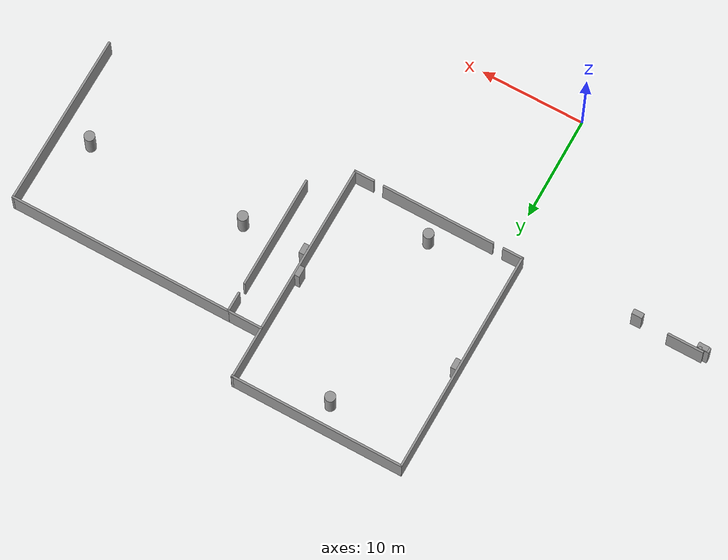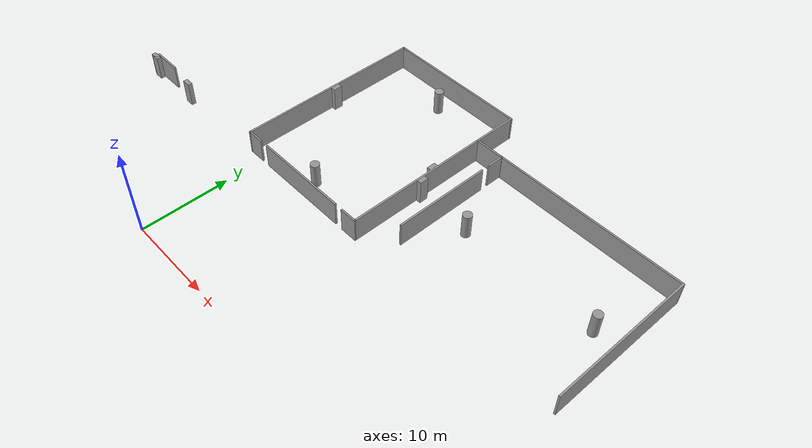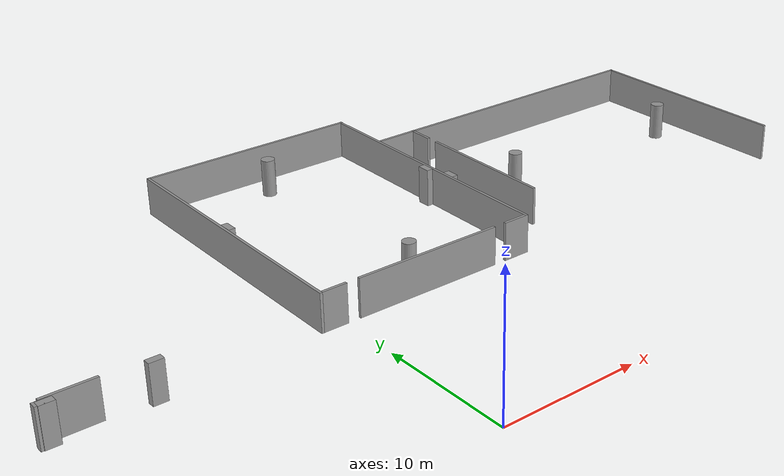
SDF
<sdf version="1.6">
 <world name="default">
  <model name="grey_wall_0_0_clone_2_0_clone_clone">
   <link name="link">
    <pose>0 0 1.4 0 -0 0</pose>
    <inertial>
     <mass>1</mass>
     <inertia><ixx>1</ixx><ixy>0</ixy><ixz>0</ixz><iyy>1</iyy><iyz>0</iyz><izz>1</izz></inertia>
    </inertial>
    <visual name="visual">
     <cast_shadows>0</cast_shadows>
     <geometry><box><size>3.5 0.2 2.8</size></box></geometry>
     <material>
      <script>
       <uri>model://grey_wall/materials/scripts</uri>
       <uri>model://grey_wall/materials/textures</uri>
       <name>vrc/grey_wall</name>
      </script>
      <ambient>1 1 1 1</ambient>
      <diffuse>1 1 1 1</diffuse>
      <specular>0 0 0 1</specular>
      <emissive>0 0 0 1</emissive>
      <shader type="vertex"><normal_map>__default__</normal_map></shader>
     </material>
    </visual>
    <collision name="collision">
     <geometry><box><size>3.5 0.2 2.8</size></box></geometry>
     <surface>
      <friction>
       <ode><mu>1</mu><mu2>1</mu2><fdir1>0 0 0</fdir1><slip1>0</slip1><slip2>0</slip2></ode>
       <torsional>
        <coefficient>1</coefficient>
        <patch_radius>0</patch_radius>
        <surface_radius>0</surface_radius>
        <use_patch_radius>1</use_patch_radius>
        <ode><slip>0</slip></ode>
       </torsional>
      </friction>
      <bounce><restitution_coefficient>0</restitution_coefficient><threshold>1e+06</threshold></bounce>
      <contact>
       <collide_without_contact>0</collide_without_contact>
       <collide_without_contact_bitmask>1</collide_without_contact_bitmask>
       <collide_bitmask>1</collide_bitmask>
       <ode>
        <soft_cfm>0</soft_cfm>
        <soft_erp>0.2</soft_erp>
        <kp>1e+13</kp>
        <kd>1</kd>
        <max_vel>0.01</max_vel>
        <min_depth>0</min_depth>
       </ode>
       <bullet>
        <split_impulse>1</split_impulse>
        <split_impulse_penetration_threshold>-0.01</split_impulse_penetration_threshold>
        <soft_cfm>0</soft_cfm>
        <soft_erp>0.2</soft_erp>
        <kp>1e+13</kp>
        <kd>1</kd>
       </bullet>
      </contact>
     </surface>
    </collision>
   </link>
   <static>1</static>
   <pose>-17.8174 14.5517 0 0 -0 0</pose>
  </model>
  <model name="g2_clone_0_0_0_clone">
   <link name="link">
    <pose>0 0 1.4 0 -0 0</pose>
    <inertial>
     <mass>1</mass>
     <inertia><ixx>1</ixx><ixy>0</ixy><ixz>0</ixz><iyy>1</iyy><iyz>0</iyz><izz>1</izz></inertia>
    </inertial>
    <visual name="visual">
     <cast_shadows>0</cast_shadows>
     <geometry><box><size>21.8 0.2 2.8</size></box></geometry>
     <material>
      <script>
       <uri>model://grey_wall/materials/scripts</uri>
       <uri>model://grey_wall/materials/textures</uri>
       <name>vrc/grey_wall</name>
      </script>
      <ambient>1 1 1 1</ambient>
      <diffuse>1 1 1 1</diffuse>
      <specular>0 0 0 1</specular>
      <emissive>0 0 0 1</emissive>
      <shader type="vertex"><normal_map>__default__</normal_map></shader>
     </material>
    </visual>
    <collision name="collision">
     <geometry><box><size>21.8 0.2 2.8</size></box></geometry>
     <surface>
      <friction>
       <ode><mu>1</mu><mu2>1</mu2><fdir1>0 0 0</fdir1><slip1>0</slip1><slip2>0</slip2></ode>
       <torsional>
        <coefficient>1</coefficient>
        <patch_radius>0</patch_radius>
        <surface_radius>0</surface_radius>
        <use_patch_radius>1</use_patch_radius>
        <ode><slip>0</slip></ode>
       </torsional>
      </friction>
      <bounce><restitution_coefficient>0</restitution_coefficient><threshold>1e+06</threshold></bounce>
      <contact>
       <collide_without_contact>0</collide_without_contact>
       <collide_without_contact_bitmask>1</collide_without_contact_bitmask>
       <collide_bitmask>1</collide_bitmask>
       <ode>
        <soft_cfm>0</soft_cfm>
        <soft_erp>0.2</soft_erp>
        <kp>1e+13</kp>
        <kd>1</kd>
        <max_vel>0.01</max_vel>
        <min_depth>0</min_depth>
       </ode>
       <bullet>
        <split_impulse>1</split_impulse>
        <split_impulse_penetration_threshold>-0.01</split_impulse_penetration_threshold>
        <soft_cfm>0</soft_cfm>
        <soft_erp>0.2</soft_erp>
        <kp>1e+13</kp>
        <kd>1</kd>
       </bullet>
      </contact>
     </surface>
    </collision>
   </link>
   <static>1</static>
   <pose>14.8836 25.3813 0 0 0 -1.57584</pose>
  </model>
  <model name="g2_clone_0_0_clone_clone_0">
   <link name="link">
    <pose>0 0 1.4 0 -0 0</pose>
    <inertial>
     <mass>1</mass>
     <inertia><ixx>1</ixx><ixy>0</ixy><ixz>0</ixz><iyy>1</iyy><iyz>0</iyz><izz>1</izz></inertia>
    </inertial>
    <visual name="visual">
     <cast_shadows>0</cast_shadows>
     <geometry><box><size>21.8 0.2 2.8</size></box></geometry>
     <material>
      <script>
       <uri>model://grey_wall/materials/scripts</uri>
       <uri>model://grey_wall/materials/textures</uri>
       <name>vrc/grey_wall</name>
      </script>
      <ambient>1 1 1 1</ambient>
      <diffuse>1 1 1 1</diffuse>
      <specular>0 0 0 1</specular>
      <emissive>0 0 0 1</emissive>
      <shader type="vertex"><normal_map>__default__</normal_map></shader>
     </material>
    </visual>
    <collision name="collision">
     <geometry><box><size>21.8 0.2 2.8</size></box></geometry>
     <surface>
      <friction>
       <ode><mu>1</mu><mu2>1</mu2><fdir1>0 0 0</fdir1><slip1>0</slip1><slip2>0</slip2></ode>
       <torsional>
        <coefficient>1</coefficient>
        <patch_radius>0</patch_radius>
        <surface_radius>0</surface_radius>
        <use_patch_radius>1</use_patch_radius>
        <ode><slip>0</slip></ode>
       </torsional>
      </friction>
      <bounce><restitution_coefficient>0</restitution_coefficient><threshold>1e+06</threshold></bounce>
      <contact>
       <collide_without_contact>0</collide_without_contact>
       <collide_without_contact_bitmask>1</collide_without_contact_bitmask>
       <collide_bitmask>1</collide_bitmask>
       <ode>
        <soft_cfm>0</soft_cfm>
        <soft_erp>0.2</soft_erp>
        <kp>1e+13</kp>
        <kd>1</kd>
        <max_vel>0.01</max_vel>
        <min_depth>0</min_depth>
       </ode>
       <bullet>
        <split_impulse>1</split_impulse>
        <split_impulse_penetration_threshold>-0.01</split_impulse_penetration_threshold>
        <soft_cfm>0</soft_cfm>
        <soft_erp>0.2</soft_erp>
        <kp>1e+13</kp>
        <kd>1</kd>
       </bullet>
      </contact>
     </surface>
    </collision>
   </link>
   <static>1</static>
   <pose>-1.71755 25.3759 0 0 0 -1.57584</pose>
  </model>
  <model name="g3_clone_clone_0_clone_0_0_0_0_0_0_clone_clone_clone_0_clone_0_clone_0_clone_0_clone_clone">
   <link name="link">
    <pose>1.55996 -1.33829 1.4 0 -0 0.001589</pose>
    <inertial>
     <mass>1</mass>
     <inertia><ixx>1</ixx><ixy>0</ixy><ixz>0</ixz><iyy>1</iyy><iyz>0</iyz><izz>1</izz></inertia>
    </inertial>
    <visual name="visual">
     <cast_shadows>0</cast_shadows>
     <geometry><box><size>2 0.2 2.8</size></box></geometry>
     <material>
      <script>
       <uri>model://grey_wall/materials/scripts</uri>
       <uri>model://grey_wall/materials/textures</uri>
       <name>vrc/grey_wall</name>
      </script>
      <ambient>1 1 1 1</ambient>
      <diffuse>1 1 1 1</diffuse>
      <specular>0 0 0 1</specular>
      <emissive>0 0 0 1</emissive>
      <shader type="vertex"><normal_map>__default__</normal_map></shader>
     </material>
    </visual>
    <collision name="collision">
     <geometry><box><size>2 0.2 2.8</size></box></geometry>
     <surface>
      <friction>
       <ode><mu>1</mu><mu2>1</mu2><fdir1>0 0 0</fdir1><slip1>0</slip1><slip2>0</slip2></ode>
       <torsional>
        <coefficient>1</coefficient>
        <patch_radius>0</patch_radius>
        <surface_radius>0</surface_radius>
        <use_patch_radius>1</use_patch_radius>
        <ode><slip>0</slip></ode>
       </torsional>
      </friction>
      <bounce><restitution_coefficient>0</restitution_coefficient><threshold>1e+06</threshold></bounce>
      <contact>
       <collide_without_contact>0</collide_without_contact>
       <collide_without_contact_bitmask>1</collide_without_contact_bitmask>
       <collide_bitmask>1</collide_bitmask>
       <ode>
        <soft_cfm>0</soft_cfm>
        <soft_erp>0.2</soft_erp>
        <kp>1e+13</kp>
        <kd>1</kd>
        <max_vel>0.01</max_vel>
        <min_depth>0</min_depth>
       </ode>
       <bullet>
        <split_impulse>1</split_impulse>
        <split_impulse_penetration_threshold>-0.01</split_impulse_penetration_threshold>
        <soft_cfm>0</soft_cfm>
        <soft_erp>0.2</soft_erp>
        <kp>1e+13</kp>
        <kd>1</kd>
       </bullet>
      </contact>
     </surface>
    </collision>
   </link>
   <static>1</static>
   <pose>12.3663 15.9115 0 0 -0 0.002262</pose>
  </model>
  <model name="g3_clone_clone_0_clone_0_0_0_0_0_0_clone_clone_clone_0_clone_0_clone_0_clone_0_clone_clone_clone">
   <link name="link">
    <pose>1.55996 -1.33829 1.4 0 -0 0.001589</pose>
    <inertial>
     <mass>1</mass>
     <inertia><ixx>1</ixx><ixy>0</ixy><ixz>0</ixz><iyy>1</iyy><iyz>0</iyz><izz>1</izz></inertia>
    </inertial>
    <visual name="visual">
     <cast_shadows>0</cast_shadows>
     <geometry><box><size>2 0.2 2.8</size></box></geometry>
     <material>
      <script>
       <uri>model://grey_wall/materials/scripts</uri>
       <uri>model://grey_wall/materials/textures</uri>
       <name>vrc/grey_wall</name>
      </script>
      <ambient>1 1 1 1</ambient>
      <diffuse>1 1 1 1</diffuse>
      <specular>0 0 0 1</specular>
      <emissive>0 0 0 1</emissive>
      <shader type="vertex"><normal_map>__default__</normal_map></shader>
     </material>
    </visual>
    <collision name="collision">
     <geometry><box><size>2 0.2 2.8</size></box></geometry>
     <surface>
      <friction>
       <ode><mu>1</mu><mu2>1</mu2><fdir1>0 0 0</fdir1><slip1>0</slip1><slip2>0</slip2></ode>
       <torsional>
        <coefficient>1</coefficient>
        <patch_radius>0</patch_radius>
        <surface_radius>0</surface_radius>
        <use_patch_radius>1</use_patch_radius>
        <ode><slip>0</slip></ode>
       </torsional>
      </friction>
      <bounce><restitution_coefficient>0</restitution_coefficient><threshold>1e+06</threshold></bounce>
      <contact>
       <collide_without_contact>0</collide_without_contact>
       <collide_without_contact_bitmask>1</collide_without_contact_bitmask>
       <collide_bitmask>1</collide_bitmask>
       <ode>
        <soft_cfm>0</soft_cfm>
        <soft_erp>0.2</soft_erp>
        <kp>1e+13</kp>
        <kd>1</kd>
        <max_vel>0.01</max_vel>
        <min_depth>0</min_depth>
       </ode>
       <bullet>
        <split_impulse>1</split_impulse>
        <split_impulse_penetration_threshold>-0.01</split_impulse_penetration_threshold>
        <soft_cfm>0</soft_cfm>
        <soft_erp>0.2</soft_erp>
        <kp>1e+13</kp>
        <kd>1</kd>
       </bullet>
      </contact>
     </surface>
    </collision>
   </link>
   <static>1</static>
   <pose>-2.43311 15.9174 0 0 -0 0.002262</pose>
  </model>
  <model name="g1_clone_1_1_0_clone_0_0">
   <link name="link">
    <pose>1.12208 9.77176 1.4 0 -0 0</pose>
    <inertial>
     <mass>1</mass>
     <inertia><ixx>1</ixx><ixy>0</ixy><ixz>0</ixz><iyy>1</iyy><iyz>0</iyz><izz>1</izz></inertia>
    </inertial>
    <visual name="visual">
     <cast_shadows>0</cast_shadows>
     <geometry><box><size>16.8 0.2 2.8</size></box></geometry>
     <material>
      <script>
       <uri>model://grey_wall/materials/scripts</uri>
       <uri>model://grey_wall/materials/textures</uri>
       <name>vrc/grey_wall</name>
      </script>
      <ambient>1 1 1 1</ambient>
      <diffuse>1 1 1 1</diffuse>
      <specular>0 0 0 1</specular>
      <emissive>0 0 0 1</emissive>
      <shader type="vertex"><normal_map>__default__</normal_map></shader>
     </material>
    </visual>
    <collision name="collision">
     <geometry><box><size>16.8 0.2 2.8</size></box></geometry>
     <surface>
      <friction>
       <ode><mu>1</mu><mu2>1</mu2><fdir1>0 0 0</fdir1><slip1>0</slip1><slip2>0</slip2></ode>
       <torsional>
        <coefficient>1</coefficient>
        <patch_radius>0</patch_radius>
        <surface_radius>0</surface_radius>
        <use_patch_radius>1</use_patch_radius>
        <ode><slip>0</slip></ode>
       </torsional>
      </friction>
      <bounce><restitution_coefficient>0</restitution_coefficient><threshold>1e+06</threshold></bounce>
      <contact>
       <collide_without_contact>0</collide_without_contact>
       <collide_without_contact_bitmask>1</collide_without_contact_bitmask>
       <collide_bitmask>1</collide_bitmask>
       <ode>
        <soft_cfm>0</soft_cfm>
        <soft_erp>0.2</soft_erp>
        <kp>1e+13</kp>
        <kd>1</kd>
        <max_vel>0.01</max_vel>
        <min_depth>0</min_depth>
       </ode>
       <bullet>
        <split_impulse>1</split_impulse>
        <split_impulse_penetration_threshold>-0.01</split_impulse_penetration_threshold>
        <soft_cfm>0</soft_cfm>
        <soft_erp>0.2</soft_erp>
        <kp>1e+13</kp>
        <kd>1</kd>
       </bullet>
      </contact>
     </surface>
    </collision>
   </link>
   <static>1</static>
   <pose>5.54232 26.4072 0 0 -0 0</pose>
  </model>
  <model name="g1_clone_1_1_clone_clone_0_0_0">
   <link name="link">
    <pose>0.251458 0.000378 1.4 0 -0 0</pose>
    <inertial>
     <mass>1</mass>
     <inertia><ixx>1</ixx><ixy>0</ixy><ixz>0</ixz><iyy>1</iyy><iyz>0</iyz><izz>1</izz></inertia>
    </inertial>
    <visual name="visual">
     <cast_shadows>0</cast_shadows>
     <geometry><box><size>11 0.2 2.8</size></box></geometry>
     <material>
      <script>
       <uri>model://grey_wall/materials/scripts</uri>
       <uri>model://grey_wall/materials/textures</uri>
       <name>vrc/grey_wall</name>
      </script>
      <ambient>1 1 1 1</ambient>
      <diffuse>1 1 1 1</diffuse>
      <specular>0 0 0 1</specular>
      <emissive>0 0 0 1</emissive>
      <shader type="vertex"><normal_map>__default__</normal_map></shader>
     </material>
    </visual>
    <collision name="collision">
     <geometry><box><size>11 0.2 2.8</size></box></geometry>
     <surface>
      <friction>
       <ode><mu>1</mu><mu2>1</mu2><fdir1>0 0 0</fdir1><slip1>0</slip1><slip2>0</slip2></ode>
       <torsional>
        <coefficient>1</coefficient>
        <patch_radius>0</patch_radius>
        <surface_radius>0</surface_radius>
        <use_patch_radius>1</use_patch_radius>
        <ode><slip>0</slip></ode>
       </torsional>
      </friction>
      <bounce><restitution_coefficient>0</restitution_coefficient><threshold>1e+06</threshold></bounce>
      <contact>
       <collide_without_contact>0</collide_without_contact>
       <collide_without_contact_bitmask>1</collide_without_contact_bitmask>
       <collide_bitmask>1</collide_bitmask>
       <ode>
        <soft_cfm>0</soft_cfm>
        <soft_erp>0.2</soft_erp>
        <kp>1e+13</kp>
        <kd>1</kd>
        <max_vel>0.01</max_vel>
        <min_depth>0</min_depth>
       </ode>
       <bullet>
        <split_impulse>1</split_impulse>
        <split_impulse_penetration_threshold>-0.01</split_impulse_penetration_threshold>
        <soft_cfm>0</soft_cfm>
        <soft_erp>0.2</soft_erp>
        <kp>1e+13</kp>
        <kd>1</kd>
       </bullet>
      </contact>
     </surface>
    </collision>
   </link>
   <static>1</static>
   <pose>6.2868 14.5881 0 0 -0 0</pose>
  </model>
  <model name="g2_clone_0_0_0_clone_clone_0_0">
   <link name="link">
    <pose>-1.56505 3.70936 1.4 0 -0 0</pose>
    <inertial>
     <mass>1</mass>
     <inertia><ixx>1</ixx><ixy>0</ixy><ixz>0</ixz><iyy>1</iyy><iyz>0</iyz><izz>1</izz></inertia>
    </inertial>
    <visual name="visual">
     <cast_shadows>0</cast_shadows>
     <geometry><box><size>16.8 0.2 2.8</size></box></geometry>
     <material>
      <script>
       <uri>model://grey_wall/materials/scripts</uri>
       <uri>model://grey_wall/materials/textures</uri>
       <name>vrc/grey_wall</name>
      </script>
      <ambient>1 1 1 1</ambient>
      <diffuse>1 1 1 1</diffuse>
      <specular>0 0 0 1</specular>
      <emissive>0 0 0 1</emissive>
      <shader type="vertex"><normal_map>__default__</normal_map></shader>
     </material>
    </visual>
    <collision name="collision">
     <geometry><box><size>16.8 0.2 2.8</size></box></geometry>
     <surface>
      <friction>
       <ode><mu>1</mu><mu2>1</mu2><fdir1>0 0 0</fdir1><slip1>0</slip1><slip2>0</slip2></ode>
       <torsional>
        <coefficient>1</coefficient>
        <patch_radius>0</patch_radius>
        <surface_radius>0</surface_radius>
        <use_patch_radius>1</use_patch_radius>
        <ode><slip>0</slip></ode>
       </torsional>
      </friction>
      <bounce><restitution_coefficient>0</restitution_coefficient><threshold>1e+06</threshold></bounce>
      <contact>
       <collide_without_contact>0</collide_without_contact>
       <collide_without_contact_bitmask>1</collide_without_contact_bitmask>
       <collide_bitmask>1</collide_bitmask>
       <ode>
        <soft_cfm>0</soft_cfm>
        <soft_erp>0.2</soft_erp>
        <kp>1e+13</kp>
        <kd>1</kd>
        <max_vel>0.01</max_vel>
        <min_depth>0</min_depth>
       </ode>
       <bullet>
        <split_impulse>1</split_impulse>
        <split_impulse_penetration_threshold>-0.01</split_impulse_penetration_threshold>
        <soft_cfm>0</soft_cfm>
        <soft_erp>0.2</soft_erp>
        <kp>1e+13</kp>
        <kd>1</kd>
       </bullet>
      </contact>
     </surface>
    </collision>
   </link>
   <static>1</static>
   <pose>36.0509 21.338 0 0 0 -1.57584</pose>
  </model>
  <model name="grey_wall_0_clone_0_0_clone_clone_0_0_clone">
   <link name="link">
    <pose>-2.47487 -23.0664 1.4 0 -0 0</pose>
    <inertial>
     <mass>1</mass>
     <inertia><ixx>1</ixx><ixy>0</ixy><ixz>0</ixz><iyy>1</iyy><iyz>0</iyz><izz>1</izz></inertia>
    </inertial>
    <visual name="visual">
     <cast_shadows>0</cast_shadows>
     <geometry><box><size>3.5 0.2 2.8</size></box></geometry>
     <material>
      <script>
       <uri>model://grey_wall/materials/scripts</uri>
       <uri>model://grey_wall/materials/textures</uri>
       <name>vrc/grey_wall</name>
      </script>
      <ambient>1 1 1 1</ambient>
      <diffuse>1 1 1 1</diffuse>
      <specular>0 0 0 1</specular>
      <emissive>0 0 0 1</emissive>
      <shader type="vertex"><normal_map>__default__</normal_map></shader>
     </material>
    </visual>
    <collision name="collision">
     <geometry><box><size>3.5 0.2 2.8</size></box></geometry>
     <surface>
      <friction>
       <ode><mu>1</mu><mu2>1</mu2><fdir1>0 0 0</fdir1><slip1>0</slip1><slip2>0</slip2></ode>
       <torsional>
        <coefficient>1</coefficient>
        <patch_radius>0</patch_radius>
        <surface_radius>0</surface_radius>
        <use_patch_radius>1</use_patch_radius>
        <ode><slip>0</slip></ode>
       </torsional>
      </friction>
      <bounce><restitution_coefficient>0</restitution_coefficient><threshold>1e+06</threshold></bounce>
      <contact>
       <collide_without_contact>0</collide_without_contact>
       <collide_without_contact_bitmask>1</collide_without_contact_bitmask>
       <collide_bitmask>1</collide_bitmask>
       <ode>
        <soft_cfm>0</soft_cfm>
        <soft_erp>0.2</soft_erp>
        <kp>1e+13</kp>
        <kd>1</kd>
        <max_vel>0.01</max_vel>
        <min_depth>0</min_depth>
       </ode>
       <bullet>
        <split_impulse>1</split_impulse>
        <split_impulse_penetration_threshold>-0.01</split_impulse_penetration_threshold>
        <soft_cfm>0</soft_cfm>
        <soft_erp>0.2</soft_erp>
        <kp>1e+13</kp>
        <kd>1</kd>
       </bullet>
      </contact>
     </surface>
    </collision>
   </link>
   <static>1</static>
   <pose>19.0592 54.2446 0 0 -0 0</pose>
  </model>
  <model name="g2_clone_0_0_0_clone_clone_0_0_clone_clone_1_0">
   <link name="link">
    <pose>-1.56505 3.70936 1.4 0 -0 0</pose>
    <inertial>
     <mass>1</mass>
     <inertia><ixx>1</ixx><ixy>0</ixy><ixz>0</ixz><iyy>1</iyy><iyz>0</iyz><izz>1</izz></inertia>
    </inertial>
    <visual name="visual">
     <cast_shadows>0</cast_shadows>
     <geometry><box><size>11 0.2 2.8</size></box></geometry>
     <material>
      <script>
       <uri>model://grey_wall/materials/scripts</uri>
       <uri>model://grey_wall/materials/textures</uri>
       <name>vrc/grey_wall</name>
      </script>
      <ambient>1 1 1 1</ambient>
      <diffuse>1 1 1 1</diffuse>
      <specular>0 0 0 1</specular>
      <emissive>0 0 0 1</emissive>
      <shader type="vertex"><normal_map>__default__</normal_map></shader>
     </material>
    </visual>
    <collision name="collision">
     <geometry><box><size>11 0.2 2.8</size></box></geometry>
     <surface>
      <friction>
       <ode><mu>1</mu><mu2>1</mu2><fdir1>0 0 0</fdir1><slip1>0</slip1><slip2>0</slip2></ode>
       <torsional>
        <coefficient>1</coefficient>
        <patch_radius>0</patch_radius>
        <surface_radius>0</surface_radius>
        <use_patch_radius>1</use_patch_radius>
        <ode><slip>0</slip></ode>
       </torsional>
      </friction>
      <bounce><restitution_coefficient>0</restitution_coefficient><threshold>1e+06</threshold></bounce>
      <contact>
       <collide_without_contact>0</collide_without_contact>
       <collide_without_contact_bitmask>1</collide_without_contact_bitmask>
       <collide_bitmask>1</collide_bitmask>
       <ode>
        <soft_cfm>0</soft_cfm>
        <soft_erp>0.2</soft_erp>
        <kp>1e+13</kp>
        <kd>1</kd>
        <max_vel>0.01</max_vel>
        <min_depth>0</min_depth>
       </ode>
       <bullet>
        <split_impulse>1</split_impulse>
        <split_impulse_penetration_threshold>-0.01</split_impulse_penetration_threshold>
        <soft_cfm>0</soft_cfm>
        <soft_erp>0.2</soft_erp>
        <kp>1e+13</kp>
        <kd>1</kd>
       </bullet>
      </contact>
     </surface>
    </collision>
   </link>
   <static>1</static>
   <pose>14.4586 21.3275 0 0 0 -1.57584</pose>
  </model>
  <model name="g2_clone_0_0_0_clone_clone_0_0_clone_clone_0_clone_0">
   <link name="link">
    <pose>-1.56505 3.70936 1.4 0 -0 0</pose>
    <inertial>
     <mass>1</mass>
     <inertia><ixx>1</ixx><ixy>0</ixy><ixz>0</ixz><iyy>1</iyy><iyz>0</iyz><izz>1</izz></inertia>
    </inertial>
    <visual name="visual">
     <cast_shadows>0</cast_shadows>
     <geometry><box><size>2 0.2 2.8</size></box></geometry>
     <material>
      <script>
       <uri>model://grey_wall/materials/scripts</uri>
       <uri>model://grey_wall/materials/textures</uri>
       <name>vrc/grey_wall</name>
      </script>
      <ambient>1 1 1 1</ambient>
      <diffuse>1 1 1 1</diffuse>
      <specular>0 0 0 1</specular>
      <emissive>0 0 0 1</emissive>
      <shader type="vertex"><normal_map>__default__</normal_map></shader>
     </material>
    </visual>
    <collision name="collision">
     <geometry><box><size>2 0.2 2.8</size></box></geometry>
     <surface>
      <friction>
       <ode><mu>1</mu><mu2>1</mu2><fdir1>0 0 0</fdir1><slip1>0</slip1><slip2>0</slip2></ode>
       <torsional>
        <coefficient>1</coefficient>
        <patch_radius>0</patch_radius>
        <surface_radius>0</surface_radius>
        <use_patch_radius>1</use_patch_radius>
        <ode><slip>0</slip></ode>
       </torsional>
      </friction>
      <bounce><restitution_coefficient>0</restitution_coefficient><threshold>1e+06</threshold></bounce>
      <contact>
       <collide_without_contact>0</collide_without_contact>
       <collide_without_contact_bitmask>1</collide_without_contact_bitmask>
       <collide_bitmask>1</collide_bitmask>
       <ode>
        <soft_cfm>0</soft_cfm>
        <soft_erp>0.2</soft_erp>
        <kp>1e+13</kp>
        <kd>1</kd>
        <max_vel>0.01</max_vel>
        <min_depth>0</min_depth>
       </ode>
       <bullet>
        <split_impulse>1</split_impulse>
        <split_impulse_penetration_threshold>-0.01</split_impulse_penetration_threshold>
        <soft_cfm>0</soft_cfm>
        <soft_erp>0.2</soft_erp>
        <kp>1e+13</kp>
        <kd>1</kd>
       </bullet>
      </contact>
     </surface>
    </collision>
   </link>
   <static>1</static>
   <pose>14.4906 28.7165 0 0 0 -1.57584</pose>
  </model>
  <model name="g1_clone_1_1_0_clone_0_0_clone_0_0_clone_clone">
   <link name="link">
    <pose>1.12208 9.77176 1.4 0 -0 0</pose>
    <inertial>
     <mass>1</mass>
     <inertia><ixx>1</ixx><ixy>0</ixy><ixz>0</ixz><iyy>1</iyy><iyz>0</iyz><izz>1</izz></inertia>
    </inertial>
    <visual name="visual">
     <cast_shadows>0</cast_shadows>
     <geometry><box><size>21.8 0.2 2.8</size></box></geometry>
     <material>
      <script>
       <uri>model://grey_wall/materials/scripts</uri>
       <uri>model://grey_wall/materials/textures</uri>
       <name>vrc/grey_wall</name>
      </script>
      <ambient>1 1 1 1</ambient>
      <diffuse>1 1 1 1</diffuse>
      <specular>0 0 0 1</specular>
      <emissive>0 0 0 1</emissive>
      <shader type="vertex"><normal_map>__default__</normal_map></shader>
     </material>
    </visual>
    <collision name="collision">
     <geometry><box><size>21.8 0.2 2.8</size></box></geometry>
     <surface>
      <friction>
       <ode><mu>1</mu><mu2>1</mu2><fdir1>0 0 0</fdir1><slip1>0</slip1><slip2>0</slip2></ode>
       <torsional>
        <coefficient>1</coefficient>
        <patch_radius>0</patch_radius>
        <surface_radius>0</surface_radius>
        <use_patch_radius>1</use_patch_radius>
        <ode><slip>0</slip></ode>
       </torsional>
      </friction>
      <bounce><restitution_coefficient>0</restitution_coefficient><threshold>1e+06</threshold></bounce>
      <contact>
       <collide_without_contact>0</collide_without_contact>
       <collide_without_contact_bitmask>1</collide_without_contact_bitmask>
       <collide_bitmask>1</collide_bitmask>
       <ode>
        <soft_cfm>0</soft_cfm>
        <soft_erp>0.2</soft_erp>
        <kp>1e+13</kp>
        <kd>1</kd>
        <max_vel>0.01</max_vel>
        <min_depth>0</min_depth>
       </ode>
       <bullet>
        <split_impulse>1</split_impulse>
        <split_impulse_penetration_threshold>-0.01</split_impulse_penetration_threshold>
        <soft_cfm>0</soft_cfm>
        <soft_erp>0.2</soft_erp>
        <kp>1e+13</kp>
        <kd>1</kd>
       </bullet>
      </contact>
     </surface>
    </collision>
   </link>
   <static>1</static>
   <pose>27.8887 21.4116 0 0 -0 0</pose>
  </model>
  <model name="unit_cylinder_0_1_0_clone_1_clone">
   <link name="link">
    <pose>0.876728 0.324661 0.817505 0 -0 0</pose>
    <inertial>
     <mass>1</mass>
     <inertia><ixx>0.145833</ixx><ixy>0</ixy><ixz>0</ixz><iyy>0.145833</iyy><iyz>0</iyz><izz>0.125</izz></inertia>
    </inertial>
    <visual name="visual">
     <geometry><cylinder><radius>0.5</radius><length>2.8</length></cylinder></geometry>
     <material>
      <script><name>Gazebo/Grey</name><uri>file://media/materials/scripts/gazebo.material</uri></script>
      <ambient>0.3 0.3 0.3 1</ambient>
      <diffuse>0.7 0.7 0.7 1</diffuse>
      <specular>0.01 0.01 0.01 1</specular>
      <emissive>0 0 0 1</emissive>
      <shader type="vertex"><normal_map>__default__</normal_map></shader>
     </material>
    </visual>
    <collision name="collision">
     <geometry><cylinder><radius>0.5</radius><length>2.8</length></cylinder></geometry>
     <surface>
      <friction>
       <ode><mu>1</mu><mu2>1</mu2><fdir1>0 0 0</fdir1><slip1>0</slip1><slip2>0</slip2></ode>
       <torsional>
        <coefficient>1</coefficient>
        <patch_radius>0</patch_radius>
        <surface_radius>0</surface_radius>
        <use_patch_radius>1</use_patch_radius>
        <ode><slip>0</slip></ode>
       </torsional>
      </friction>
      <bounce><restitution_coefficient>0</restitution_coefficient><threshold>1e+06</threshold></bounce>
      <contact>
       <collide_without_contact>0</collide_without_contact>
       <collide_without_contact_bitmask>1</collide_without_contact_bitmask>
       <collide_bitmask>1</collide_bitmask>
       <ode>
        <soft_cfm>0</soft_cfm>
        <soft_erp>0.2</soft_erp>
        <kp>1e+13</kp>
        <kd>1</kd>
        <max_vel>0.01</max_vel>
        <min_depth>0</min_depth>
       </ode>
       <bullet>
        <split_impulse>1</split_impulse>
        <split_impulse_penetration_threshold>-0.01</split_impulse_penetration_threshold>
        <soft_cfm>0</soft_cfm>
        <soft_erp>0.2</soft_erp>
        <kp>1e+13</kp>
        <kd>1</kd>
       </bullet>
      </contact>
     </surface>
    </collision>
   </link>
   <static>0</static>
   <pose>35.9486 22.7184 0.582488 0 0 -5.5e-05</pose>
  </model>
  <model name="unit_cylinder_0_1_0_clone_1_clone_0">
   <link name="link">
    <pose>0.876728 0.324661 0.817505 0 -0 0</pose>
    <inertial>
     <mass>1</mass>
     <inertia><ixx>0.145833</ixx><ixy>0</ixy><ixz>0</ixz><iyy>0.145833</iyy><iyz>0</iyz><izz>0.125</izz></inertia>
    </inertial>
    <visual name="visual">
     <geometry><cylinder><radius>0.5</radius><length>2.8</length></cylinder></geometry>
     <material>
      <script><name>Gazebo/Grey</name><uri>file://media/materials/scripts/gazebo.material</uri></script>
      <ambient>0.3 0.3 0.3 1</ambient>
      <diffuse>0.7 0.7 0.7 1</diffuse>
      <specular>0.01 0.01 0.01 1</specular>
      <emissive>0 0 0 1</emissive>
      <shader type="vertex"><normal_map>__default__</normal_map></shader>
     </material>
    </visual>
    <collision name="collision">
     <geometry><cylinder><radius>0.5</radius><length>2.8</length></cylinder></geometry>
     <surface>
      <friction>
       <ode><mu>1</mu><mu2>1</mu2><fdir1>0 0 0</fdir1><slip1>0</slip1><slip2>0</slip2></ode>
       <torsional>
        <coefficient>1</coefficient>
        <patch_radius>0</patch_radius>
        <surface_radius>0</surface_radius>
        <use_patch_radius>1</use_patch_radius>
        <ode><slip>0</slip></ode>
       </torsional>
      </friction>
      <bounce><restitution_coefficient>0</restitution_coefficient><threshold>1e+06</threshold></bounce>
      <contact>
       <collide_without_contact>0</collide_without_contact>
       <collide_without_contact_bitmask>1</collide_without_contact_bitmask>
       <collide_bitmask>1</collide_bitmask>
       <ode>
        <soft_cfm>0</soft_cfm>
        <soft_erp>0.2</soft_erp>
        <kp>1e+13</kp>
        <kd>1</kd>
        <max_vel>0.01</max_vel>
        <min_depth>0</min_depth>
       </ode>
       <bullet>
        <split_impulse>1</split_impulse>
        <split_impulse_penetration_threshold>-0.01</split_impulse_penetration_threshold>
        <soft_cfm>0</soft_cfm>
        <soft_erp>0.2</soft_erp>
        <kp>1e+13</kp>
        <kd>1</kd>
       </bullet>
      </contact>
     </surface>
    </collision>
   </link>
   <static>0</static>
   <pose>20.5232 22.6592 0.582488 0 0 -5.5e-05</pose>
  </model>
  <model name="unit_cylinder_0_1_0_clone_1_clone_0_clone">
   <link name="link">
    <pose>0.876728 0.324661 0.817505 0 -0 0</pose>
    <inertial>
     <mass>1</mass>
     <inertia><ixx>0.145833</ixx><ixy>0</ixy><ixz>0</ixz><iyy>0.145833</iyy><iyz>0</iyz><izz>0.125</izz></inertia>
    </inertial>
    <visual name="visual">
     <geometry><cylinder><radius>0.5</radius><length>2.8</length></cylinder></geometry>
     <material>
      <script><name>Gazebo/Grey</name><uri>file://media/materials/scripts/gazebo.material</uri></script>
      <ambient>0.3 0.3 0.3 1</ambient>
      <diffuse>0.7 0.7 0.7 1</diffuse>
      <specular>0.01 0.01 0.01 1</specular>
      <emissive>0 0 0 1</emissive>
      <shader type="vertex"><normal_map>__default__</normal_map></shader>
     </material>
    </visual>
    <collision name="collision">
     <geometry><cylinder><radius>0.5</radius><length>2.8</length></cylinder></geometry>
     <surface>
      <friction>
       <ode><mu>1</mu><mu2>1</mu2><fdir1>0 0 0</fdir1><slip1>0</slip1><slip2>0</slip2></ode>
       <torsional>
        <coefficient>1</coefficient>
        <patch_radius>0</patch_radius>
        <surface_radius>0</surface_radius>
        <use_patch_radius>1</use_patch_radius>
        <ode><slip>0</slip></ode>
       </torsional>
      </friction>
      <bounce><restitution_coefficient>0</restitution_coefficient><threshold>1e+06</threshold></bounce>
      <contact>
       <collide_without_contact>0</collide_without_contact>
       <collide_without_contact_bitmask>1</collide_without_contact_bitmask>
       <collide_bitmask>1</collide_bitmask>
       <ode>
        <soft_cfm>0</soft_cfm>
        <soft_erp>0.2</soft_erp>
        <kp>1e+13</kp>
        <kd>1</kd>
        <max_vel>0.01</max_vel>
        <min_depth>0</min_depth>
       </ode>
       <bullet>
        <split_impulse>1</split_impulse>
        <split_impulse_penetration_threshold>-0.01</split_impulse_penetration_threshold>
        <soft_cfm>0</soft_cfm>
        <soft_erp>0.2</soft_erp>
        <kp>1e+13</kp>
        <kd>1</kd>
       </bullet>
      </contact>
     </surface>
    </collision>
   </link>
   <static>0</static>
   <pose>5.79986 33.3857 0.582488 0 0 -5.7e-05</pose>
  </model>
  <model name="unit_box_0_0_clone_0_0_clone_2">
   <link name="link">
    <pose>-7.83659 0.075446 3.84331 0 -0 0</pose>
    <inertial>
     <mass>1</mass>
     <inertia>
      <ixx>0.166667</ixx>
      <ixy>0</ixy>
      <ixz>0</ixz>
      <iyy>0.166667</iyy>
      <iyz>0</iyz>
      <izz>0.166667</izz>
     </inertia>
    </inertial>
    <visual name="visual">
     <geometry><box><size>1 0.5 2.8</size></box></geometry>
     <material>
      <script><name>Gazebo/Grey</name><uri>file://media/materials/scripts/gazebo.material</uri></script>
      <ambient>0.3 0.3 0.3 1</ambient>
      <diffuse>0.7 0.7 0.7 1</diffuse>
      <specular>0.01 0.01 0.01 1</specular>
      <emissive>0 0 0 1</emissive>
      <shader type="vertex"><normal_map>__default__</normal_map></shader>
     </material>
    </visual>
    <collision name="collision">
     <geometry><box><size>1 0.5 2.8</size></box></geometry>
     <surface>
      <friction>
       <ode><mu>1</mu><mu2>1</mu2><fdir1>0 0 0</fdir1><slip1>0</slip1><slip2>0</slip2></ode>
       <torsional>
        <coefficient>1</coefficient>
        <patch_radius>0</patch_radius>
        <surface_radius>0</surface_radius>
        <use_patch_radius>1</use_patch_radius>
        <ode><slip>0</slip></ode>
       </torsional>
      </friction>
      <bounce><restitution_coefficient>0</restitution_coefficient><threshold>1e+06</threshold></bounce>
      <contact>
       <collide_without_contact>0</collide_without_contact>
       <collide_without_contact_bitmask>1</collide_without_contact_bitmask>
       <collide_bitmask>1</collide_bitmask>
       <ode>
        <soft_cfm>0</soft_cfm>
        <soft_erp>0.2</soft_erp>
        <kp>1e+13</kp>
        <kd>1</kd>
        <max_vel>0.01</max_vel>
        <min_depth>0</min_depth>
       </ode>
       <bullet>
        <split_impulse>1</split_impulse>
        <split_impulse_penetration_threshold>-0.01</split_impulse_penetration_threshold>
        <soft_cfm>0</soft_cfm>
        <soft_erp>0.2</soft_erp>
        <kp>1e+13</kp>
        <kd>1</kd>
       </bullet>
      </contact>
     </surface>
    </collision>
   </link>
   <static>0</static>
   <pose>-5.1361 14.1175 -2.44332 0 1e-06 8.2e-05</pose>
  </model>
  <model name="unit_cylinder_0_1_0_clone_1_clone_0_clone_clone_2">
   <link name="link">
    <pose>0.876728 0.324661 0.817505 0 -0 0</pose>
    <inertial>
     <mass>1</mass>
     <inertia><ixx>0.145833</ixx><ixy>0</ixy><ixz>0</ixz><iyy>0.145833</iyy><iyz>0</iyz><izz>0.125</izz></inertia>
    </inertial>
    <visual name="visual">
     <geometry><cylinder><radius>0.5</radius><length>2.8</length></cylinder></geometry>
     <material>
      <script><name>Gazebo/Grey</name><uri>file://media/materials/scripts/gazebo.material</uri></script>
      <ambient>0.3 0.3 0.3 1</ambient>
      <diffuse>0.7 0.7 0.7 1</diffuse>
      <specular>0.01 0.01 0.01 1</specular>
      <emissive>0 0 0 1</emissive>
      <shader type="vertex"><normal_map>__default__</normal_map></shader>
     </material>
    </visual>
    <collision name="collision">
     <geometry><cylinder><radius>0.5</radius><length>2.8</length></cylinder></geometry>
     <surface>
      <friction>
       <ode><mu>1</mu><mu2>1</mu2><fdir1>0 0 0</fdir1><slip1>0</slip1><slip2>0</slip2></ode>
       <torsional>
        <coefficient>1</coefficient>
        <patch_radius>0</patch_radius>
        <surface_radius>0</surface_radius>
        <use_patch_radius>1</use_patch_radius>
        <ode><slip>0</slip></ode>
       </torsional>
      </friction>
      <bounce><restitution_coefficient>0</restitution_coefficient><threshold>1e+06</threshold></bounce>
      <contact>
       <collide_without_contact>0</collide_without_contact>
       <collide_without_contact_bitmask>1</collide_without_contact_bitmask>
       <collide_bitmask>1</collide_bitmask>
       <ode>
        <soft_cfm>0</soft_cfm>
        <soft_erp>0.2</soft_erp>
        <kp>1e+13</kp>
        <kd>1</kd>
        <max_vel>0.01</max_vel>
        <min_depth>0</min_depth>
       </ode>
       <bullet>
        <split_impulse>1</split_impulse>
        <split_impulse_penetration_threshold>-0.01</split_impulse_penetration_threshold>
        <soft_cfm>0</soft_cfm>
        <soft_erp>0.2</soft_erp>
        <kp>1e+13</kp>
        <kd>1</kd>
       </bullet>
      </contact>
     </surface>
    </collision>
   </link>
   <static>0</static>
   <pose>5.56236 16.2201 0.582488 0 0 -6.2e-05</pose>
  </model>
  <model name="unit_box_0_0_clone_0_0_clone_2_clone_0_0">
   <link name="link">
    <pose>-7.83659 0.075446 3.84331 0 -0 0</pose>
    <inertial>
     <mass>1</mass>
     <inertia>
      <ixx>0.166667</ixx>
      <ixy>0</ixy>
      <ixz>0</ixz>
      <iyy>0.166667</iyy>
      <iyz>0</iyz>
      <izz>0.166667</izz>
     </inertia>
    </inertial>
    <visual name="visual">
     <geometry><box><size>0.5 1 2.8</size></box></geometry>
     <material>
      <script><name>Gazebo/Grey</name><uri>file://media/materials/scripts/gazebo.material</uri></script>
      <ambient>0.3 0.3 0.3 1</ambient>
      <diffuse>0.7 0.7 0.7 1</diffuse>
      <specular>0.01 0.01 0.01 1</specular>
      <emissive>0 0 0 1</emissive>
      <shader type="vertex"><normal_map>__default__</normal_map></shader>
     </material>
    </visual>
    <collision name="collision">
     <geometry><box><size>0.5 1 2.8</size></box></geometry>
     <surface>
      <friction>
       <ode><mu>1</mu><mu2>1</mu2><fdir1>0 0 0</fdir1><slip1>0</slip1><slip2>0</slip2></ode>
       <torsional>
        <coefficient>1</coefficient>
        <patch_radius>0</patch_radius>
        <surface_radius>0</surface_radius>
        <use_patch_radius>1</use_patch_radius>
        <ode><slip>0</slip></ode>
       </torsional>
      </friction>
      <bounce><restitution_coefficient>0</restitution_coefficient><threshold>1e+06</threshold></bounce>
      <contact>
       <collide_without_contact>0</collide_without_contact>
       <collide_without_contact_bitmask>1</collide_without_contact_bitmask>
       <collide_bitmask>1</collide_bitmask>
       <ode>
        <soft_cfm>0</soft_cfm>
        <soft_erp>0.2</soft_erp>
        <kp>1e+13</kp>
        <kd>1</kd>
        <max_vel>0.01</max_vel>
        <min_depth>0</min_depth>
       </ode>
       <bullet>
        <split_impulse>1</split_impulse>
        <split_impulse_penetration_threshold>-0.01</split_impulse_penetration_threshold>
        <soft_cfm>0</soft_cfm>
        <soft_erp>0.2</soft_erp>
        <kp>1e+13</kp>
        <kd>1</kd>
       </bullet>
      </contact>
     </surface>
    </collision>
   </link>
   <static>0</static>
   <pose>23.0602 22.9715 -2.44331 0 -0 8.2e-05</pose>
  </model>
  <model name="unit_box_0_0_clone_0_0_clone_2_clone_0_0_clone_0">
   <link name="link">
    <pose>-7.83659 0.075446 3.84331 0 -0 0</pose>
    <inertial>
     <mass>1</mass>
     <inertia>
      <ixx>0.166667</ixx>
      <ixy>0</ixy>
      <ixz>0</ixz>
      <iyy>0.166667</iyy>
      <iyz>0</iyz>
      <izz>0.166667</izz>
     </inertia>
    </inertial>
    <visual name="visual">
     <geometry><box><size>0.5 1 2.8</size></box></geometry>
     <material>
      <script><name>Gazebo/Grey</name><uri>file://media/materials/scripts/gazebo.material</uri></script>
      <ambient>0.3 0.3 0.3 1</ambient>
      <diffuse>0.7 0.7 0.7 1</diffuse>
      <specular>0.01 0.01 0.01 1</specular>
      <emissive>0 0 0 1</emissive>
      <shader type="vertex"><normal_map>__default__</normal_map></shader>
     </material>
    </visual>
    <collision name="collision">
     <geometry><box><size>0.5 1 2.8</size></box></geometry>
     <surface>
      <friction>
       <ode><mu>1</mu><mu2>1</mu2><fdir1>0 0 0</fdir1><slip1>0</slip1><slip2>0</slip2></ode>
       <torsional>
        <coefficient>1</coefficient>
        <patch_radius>0</patch_radius>
        <surface_radius>0</surface_radius>
        <use_patch_radius>1</use_patch_radius>
        <ode><slip>0</slip></ode>
       </torsional>
      </friction>
      <bounce><restitution_coefficient>0</restitution_coefficient><threshold>1e+06</threshold></bounce>
      <contact>
       <collide_without_contact>0</collide_without_contact>
       <collide_without_contact_bitmask>1</collide_without_contact_bitmask>
       <collide_bitmask>1</collide_bitmask>
       <ode>
        <soft_cfm>0</soft_cfm>
        <soft_erp>0.2</soft_erp>
        <kp>1e+13</kp>
        <kd>1</kd>
        <max_vel>0.01</max_vel>
        <min_depth>0</min_depth>
       </ode>
       <bullet>
        <split_impulse>1</split_impulse>
        <split_impulse_penetration_threshold>-0.01</split_impulse_penetration_threshold>
        <soft_cfm>0</soft_cfm>
        <soft_erp>0.2</soft_erp>
        <kp>1e+13</kp>
        <kd>1</kd>
       </bullet>
      </contact>
     </surface>
    </collision>
   </link>
   <static>0</static>
   <pose>6.47582 25.7835 -2.44331 0 -0 8.2e-05</pose>
  </model>
  <model name="unit_box_0_0_clone_0_0_clone_2_clone_0_0_clone_0_clone">
   <link name="link">
    <pose>-7.83659 0.075446 3.84331 0 -0 0</pose>
    <inertial>
     <mass>1</mass>
     <inertia>
      <ixx>0.166667</ixx>
      <ixy>0</ixy>
      <ixz>0</ixz>
      <iyy>0.166667</iyy>
      <iyz>0</iyz>
      <izz>0.166667</izz>
     </inertia>
    </inertial>
    <visual name="visual">
     <geometry><box><size>0.5 1 2.8</size></box></geometry>
     <material>
      <script><name>Gazebo/Grey</name><uri>file://media/materials/scripts/gazebo.material</uri></script>
      <ambient>0.3 0.3 0.3 1</ambient>
      <diffuse>0.7 0.7 0.7 1</diffuse>
      <specular>0.01 0.01 0.01 1</specular>
      <emissive>0 0 0 1</emissive>
      <shader type="vertex"><normal_map>__default__</normal_map></shader>
     </material>
    </visual>
    <collision name="collision">
     <geometry><box><size>0.5 1 2.8</size></box></geometry>
     <surface>
      <friction>
       <ode><mu>1</mu><mu2>1</mu2><fdir1>0 0 0</fdir1><slip1>0</slip1><slip2>0</slip2></ode>
       <torsional>
        <coefficient>1</coefficient>
        <patch_radius>0</patch_radius>
        <surface_radius>0</surface_radius>
        <use_patch_radius>1</use_patch_radius>
        <ode><slip>0</slip></ode>
       </torsional>
      </friction>
      <bounce><restitution_coefficient>0</restitution_coefficient><threshold>1e+06</threshold></bounce>
      <contact>
       <collide_without_contact>0</collide_without_contact>
       <collide_without_contact_bitmask>1</collide_without_contact_bitmask>
       <collide_bitmask>1</collide_bitmask>
       <ode>
        <soft_cfm>0</soft_cfm>
        <soft_erp>0.2</soft_erp>
        <kp>1e+13</kp>
        <kd>1</kd>
        <max_vel>0.01</max_vel>
        <min_depth>0</min_depth>
       </ode>
       <bullet>
        <split_impulse>1</split_impulse>
        <split_impulse_penetration_threshold>-0.01</split_impulse_penetration_threshold>
        <soft_cfm>0</soft_cfm>
        <soft_erp>0.2</soft_erp>
        <kp>1e+13</kp>
        <kd>1</kd>
       </bullet>
      </contact>
     </surface>
    </collision>
   </link>
   <static>0</static>
   <pose>22.3996 24.9572 -2.44331 0 -0 8.2e-05</pose>
  </model>
  <model name="unit_box_0_0_clone_0_0_clone_2_clone_0">
   <link name="link">
    <pose>-7.83659 0.075446 3.84331 0 -0 0</pose>
    <inertial>
     <mass>1</mass>
     <inertia>
      <ixx>0.166667</ixx>
      <ixy>0</ixy>
      <ixz>0</ixz>
      <iyy>0.166667</iyy>
      <iyz>0</iyz>
      <izz>0.166667</izz>
     </inertia>
    </inertial>
    <visual name="visual">
     <geometry><box><size>1 0.5 2.8</size></box></geometry>
     <material>
      <script><name>Gazebo/Grey</name><uri>file://media/materials/scripts/gazebo.material</uri></script>
      <ambient>0.3 0.3 0.3 1</ambient>
      <diffuse>0.7 0.7 0.7 1</diffuse>
      <specular>0.01 0.01 0.01 1</specular>
      <emissive>0 0 0 1</emissive>
      <shader type="vertex"><normal_map>__default__</normal_map></shader>
     </material>
    </visual>
    <collision name="collision">
     <geometry><box><size>1 0.5 2.8</size></box></geometry>
     <surface>
      <friction>
       <ode><mu>1</mu><mu2>1</mu2><fdir1>0 0 0</fdir1><slip1>0</slip1><slip2>0</slip2></ode>
       <torsional>
        <coefficient>1</coefficient>
        <patch_radius>0</patch_radius>
        <surface_radius>0</surface_radius>
        <use_patch_radius>1</use_patch_radius>
        <ode><slip>0</slip></ode>
       </torsional>
      </friction>
      <bounce><restitution_coefficient>0</restitution_coefficient><threshold>1e+06</threshold></bounce>
      <contact>
       <collide_without_contact>0</collide_without_contact>
       <collide_without_contact_bitmask>1</collide_without_contact_bitmask>
       <collide_bitmask>1</collide_bitmask>
       <ode>
        <soft_cfm>0</soft_cfm>
        <soft_erp>0.2</soft_erp>
        <kp>1e+13</kp>
        <kd>1</kd>
        <max_vel>0.01</max_vel>
        <min_depth>0</min_depth>
       </ode>
       <bullet>
        <split_impulse>1</split_impulse>
        <split_impulse_penetration_threshold>-0.01</split_impulse_penetration_threshold>
        <soft_cfm>0</soft_cfm>
        <soft_erp>0.2</soft_erp>
        <kp>1e+13</kp>
        <kd>1</kd>
       </bullet>
      </contact>
     </surface>
    </collision>
   </link>
   <static>0</static>
   <pose>-11.4694 14.0622 -2.44332 0 1e-06 8.2e-05</pose>
  </model>
  <model name="unit_box_0_0_clone_0_0_clone_2_clone_1">
   <link name="link">
    <pose>-7.83659 0.075446 3.84331 0 -0 0</pose>
    <inertial>
     <mass>1</mass>
     <inertia>
      <ixx>0.166667</ixx>
      <ixy>0</ixy>
      <ixz>0</ixz>
      <iyy>0.166667</iyy>
      <iyz>0</iyz>
      <izz>0.166667</izz>
     </inertia>
    </inertial>
    <visual name="visual">
     <geometry><box><size>1 0.5 2.8</size></box></geometry>
     <material>
      <script><name>Gazebo/Grey</name><uri>file://media/materials/scripts/gazebo.material</uri></script>
      <ambient>0.3 0.3 0.3 1</ambient>
      <diffuse>0.7 0.7 0.7 1</diffuse>
      <specular>0.01 0.01 0.01 1</specular>
      <emissive>0 0 0 1</emissive>
      <shader type="vertex"><normal_map>__default__</normal_map></shader>
     </material>
    </visual>
    <collision name="collision">
     <geometry><box><size>1 0.5 2.8</size></box></geometry>
     <surface>
      <friction>
       <ode><mu>1</mu><mu2>1</mu2><fdir1>0 0 0</fdir1><slip1>0</slip1><slip2>0</slip2></ode>
       <torsional>
        <coefficient>1</coefficient>
        <patch_radius>0</patch_radius>
        <surface_radius>0</surface_radius>
        <use_patch_radius>1</use_patch_radius>
        <ode><slip>0</slip></ode>
       </torsional>
      </friction>
      <bounce><restitution_coefficient>0</restitution_coefficient><threshold>1e+06</threshold></bounce>
      <contact>
       <collide_without_contact>0</collide_without_contact>
       <collide_without_contact_bitmask>1</collide_without_contact_bitmask>
       <collide_bitmask>1</collide_bitmask>
       <ode>
        <soft_cfm>0</soft_cfm>
        <soft_erp>0.2</soft_erp>
        <kp>1e+13</kp>
        <kd>1</kd>
        <max_vel>0.01</max_vel>
        <min_depth>0</min_depth>
       </ode>
       <bullet>
        <split_impulse>1</split_impulse>
        <split_impulse_penetration_threshold>-0.01</split_impulse_penetration_threshold>
        <soft_cfm>0</soft_cfm>
        <soft_erp>0.2</soft_erp>
        <kp>1e+13</kp>
        <kd>1</kd>
       </bullet>
      </contact>
     </surface>
    </collision>
   </link>
   <static>0</static>
   <pose>-11.655 14.1058 -2.44332 0 1e-06 8.2e-05</pose>
  </model>
 </world>
</sdf>
